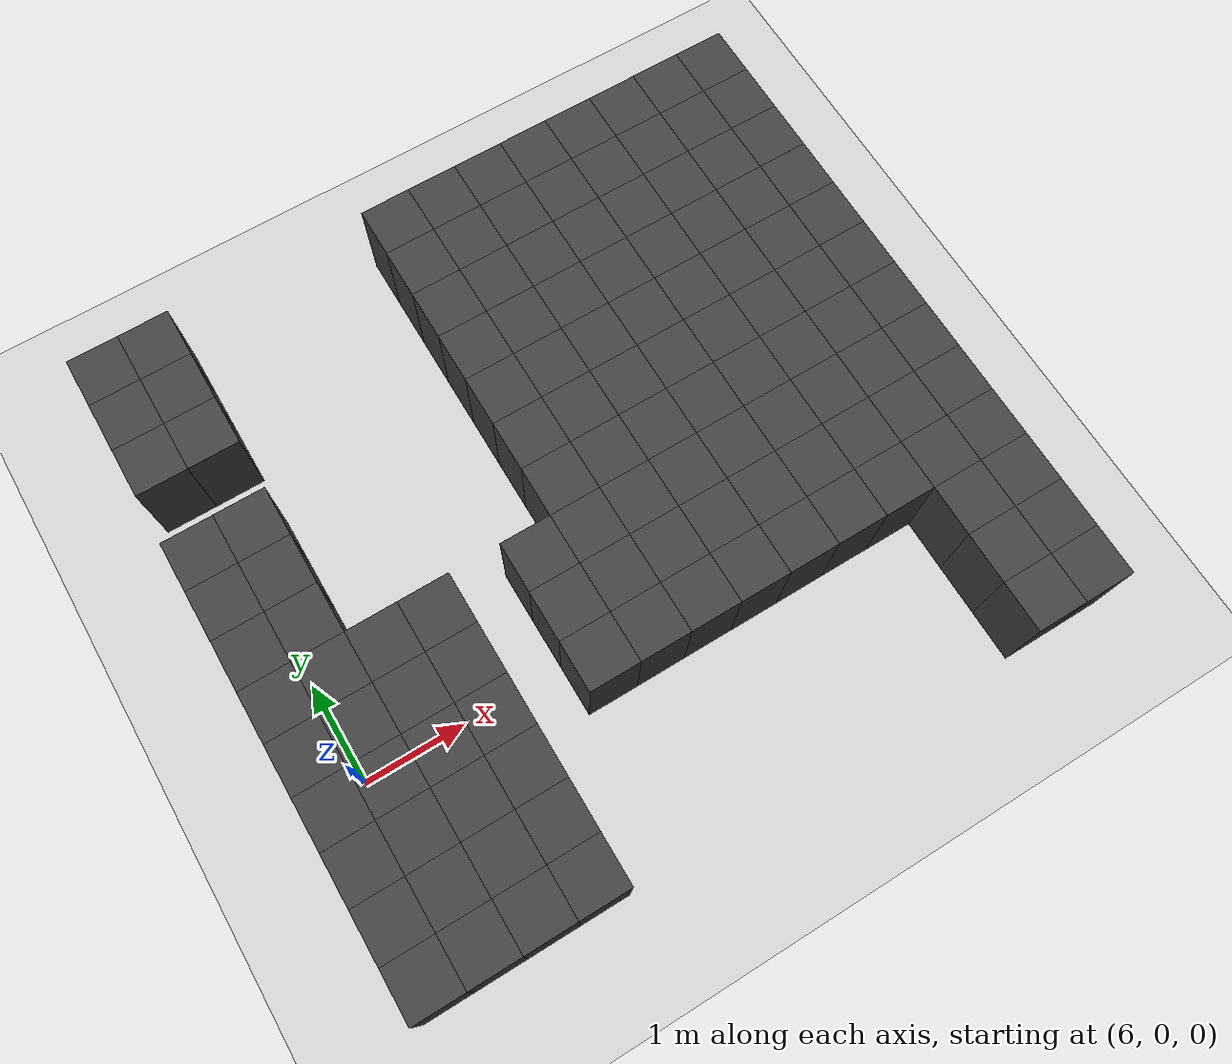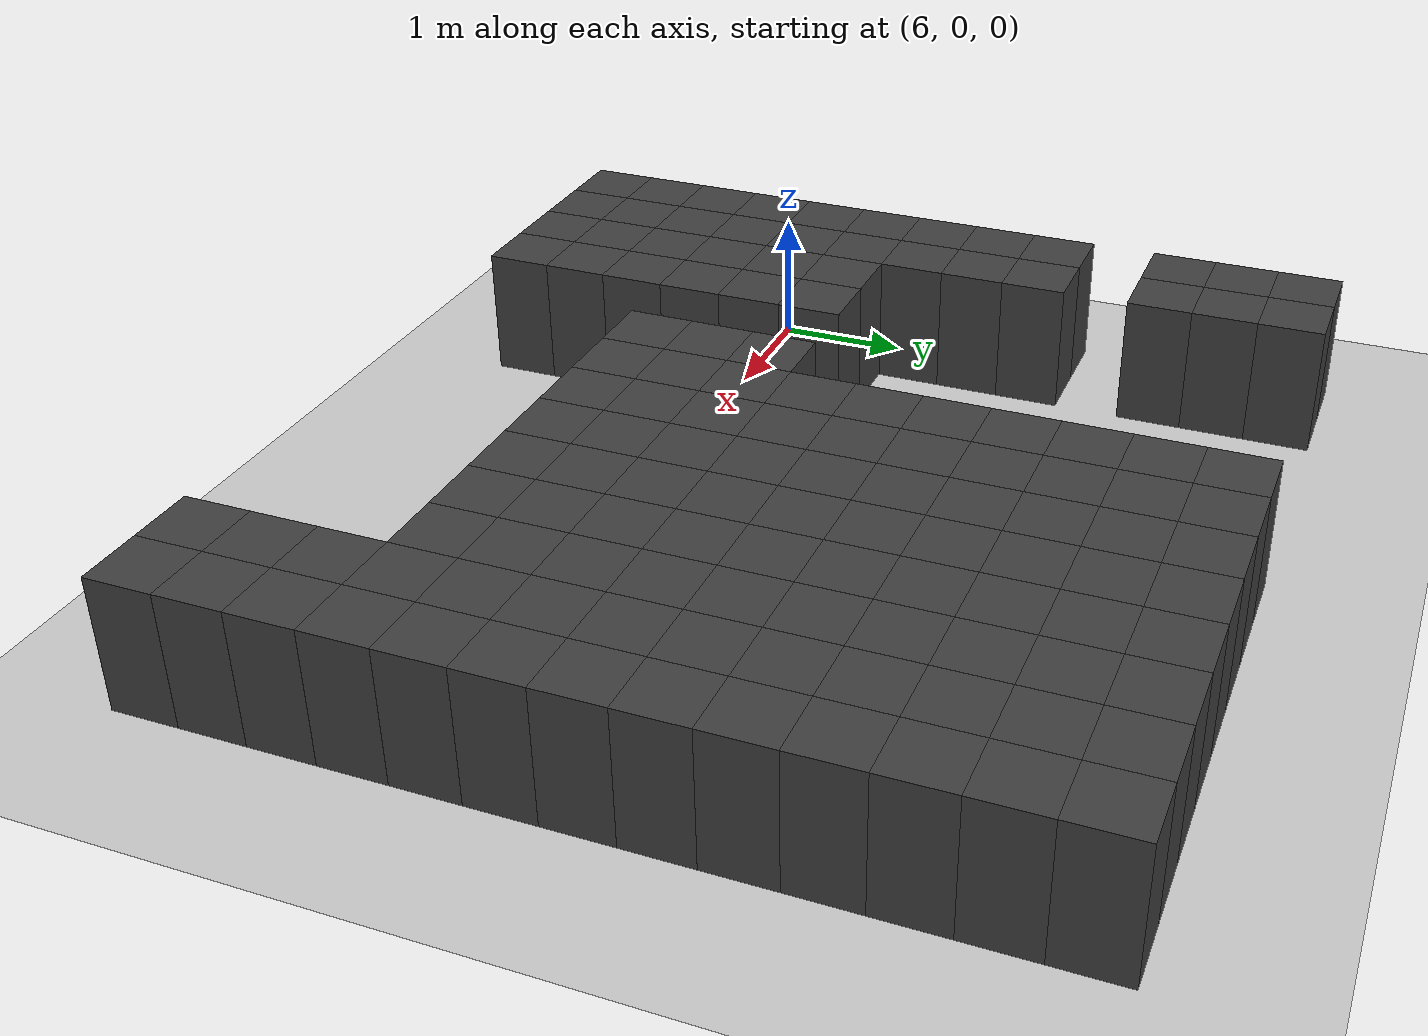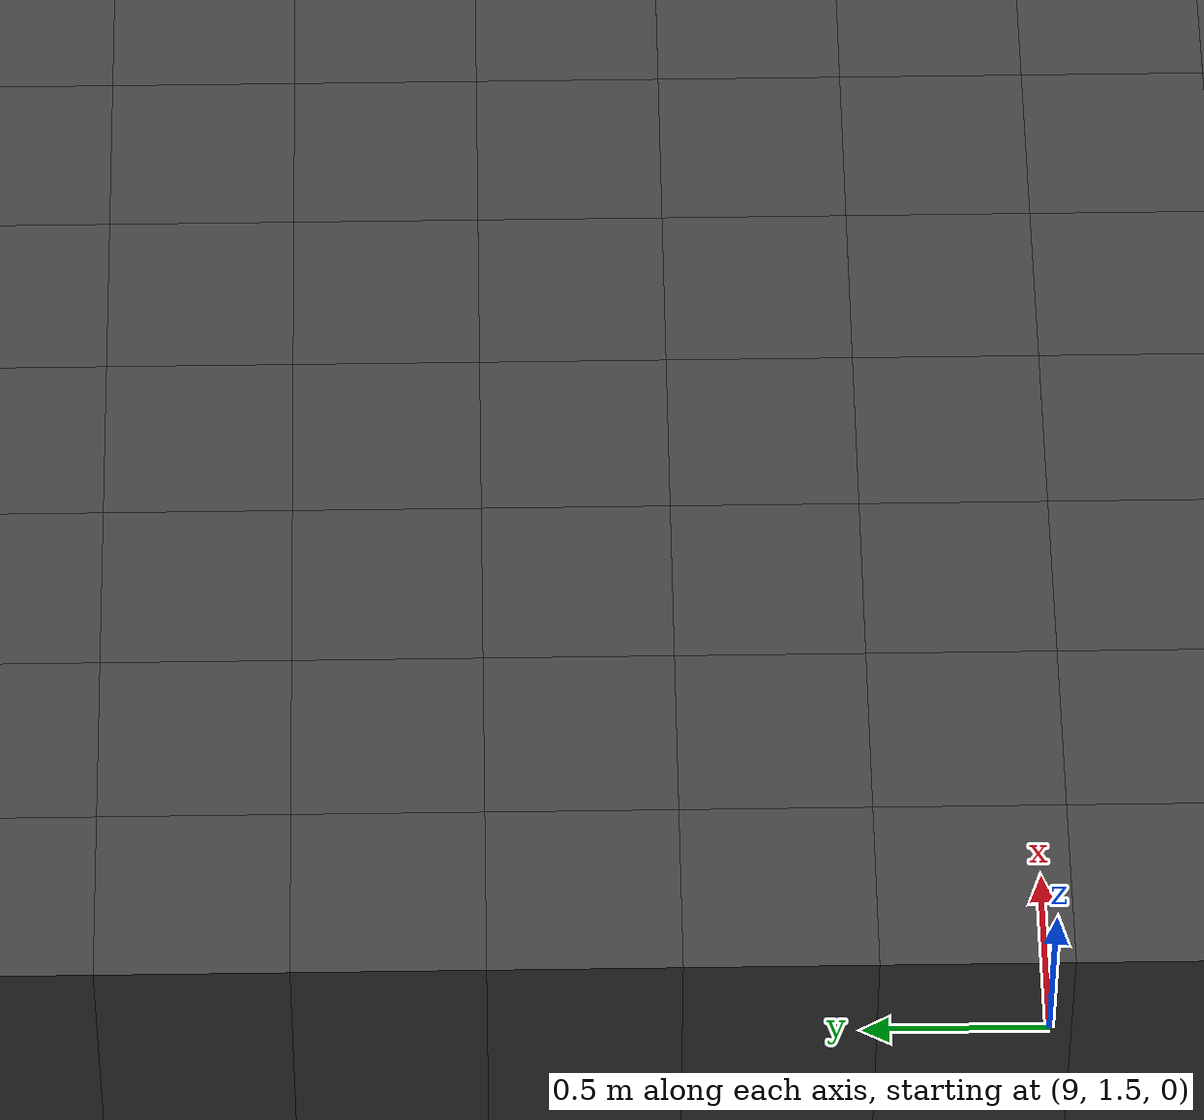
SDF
<sdf version="1.7">
 <world name="map_10764">
  <model name="ground_plane">
   <static>true</static>
   <link name="link">
    <collision name="collision">
     <geometry><plane><normal>0 0 1</normal><size>200 200</size></plane></geometry>
    </collision>
    <visual name="visual">
     <geometry><plane><normal>0 0 1</normal><size>200 200</size></plane></geometry>
     <material><ambient>0.8 0.8 0.8 1</ambient><diffuse>0.8 0.8 0.8 1</diffuse></material>
    </visual>
   </link>
  </model>
  <model name="maze_environment">
   <static>true</static>
   <link name="wall_763">
    <pose>5.750 4.250 0.500 0 0 0</pose>
    <collision name="col"><geometry><box><size>0.5 0.5 1.0</size></box></geometry></collision>
    <visual name="vis">
     <geometry><box><size>0.5 0.5 1.0</size></box></geometry>
     <material><ambient>0.15 0.15 0.15 1</ambient><diffuse>0.25 0.25 0.25 1</diffuse></material>
    </visual>
   </link>
   <link name="wall_764">
    <pose>6.250 4.250 0.500 0 0 0</pose>
    <collision name="col"><geometry><box><size>0.5 0.5 1.0</size></box></geometry></collision>
    <visual name="vis">
     <geometry><box><size>0.5 0.5 1.0</size></box></geometry>
     <material><ambient>0.15 0.15 0.15 1</ambient><diffuse>0.25 0.25 0.25 1</diffuse></material>
    </visual>
   </link>
   <link name="wall_765">
    <pose>8.750 4.250 0.500 0 0 0</pose>
    <collision name="col"><geometry><box><size>0.5 0.5 1.0</size></box></geometry></collision>
    <visual name="vis">
     <geometry><box><size>0.5 0.5 1.0</size></box></geometry>
     <material><ambient>0.15 0.15 0.15 1</ambient><diffuse>0.25 0.25 0.25 1</diffuse></material>
    </visual>
   </link>
   <link name="wall_766">
    <pose>9.250 4.250 0.500 0 0 0</pose>
    <collision name="col"><geometry><box><size>0.5 0.5 1.0</size></box></geometry></collision>
    <visual name="vis">
     <geometry><box><size>0.5 0.5 1.0</size></box></geometry>
     <material><ambient>0.15 0.15 0.15 1</ambient><diffuse>0.25 0.25 0.25 1</diffuse></material>
    </visual>
   </link>
   <link name="wall_767">
    <pose>9.750 4.250 0.500 0 0 0</pose>
    <collision name="col"><geometry><box><size>0.5 0.5 1.0</size></box></geometry></collision>
    <visual name="vis">
     <geometry><box><size>0.5 0.5 1.0</size></box></geometry>
     <material><ambient>0.15 0.15 0.15 1</ambient><diffuse>0.25 0.25 0.25 1</diffuse></material>
    </visual>
   </link>
   <link name="wall_768">
    <pose>10.250 4.250 0.500 0 0 0</pose>
    <collision name="col"><geometry><box><size>0.5 0.5 1.0</size></box></geometry></collision>
    <visual name="vis">
     <geometry><box><size>0.5 0.5 1.0</size></box></geometry>
     <material><ambient>0.15 0.15 0.15 1</ambient><diffuse>0.25 0.25 0.25 1</diffuse></material>
    </visual>
   </link>
   <link name="wall_769">
    <pose>10.750 4.250 0.500 0 0 0</pose>
    <collision name="col"><geometry><box><size>0.5 0.5 1.0</size></box></geometry></collision>
    <visual name="vis">
     <geometry><box><size>0.5 0.5 1.0</size></box></geometry>
     <material><ambient>0.15 0.15 0.15 1</ambient><diffuse>0.25 0.25 0.25 1</diffuse></material>
    </visual>
   </link>
   <link name="wall_770">
    <pose>11.250 4.250 0.500 0 0 0</pose>
    <collision name="col"><geometry><box><size>0.5 0.5 1.0</size></box></geometry></collision>
    <visual name="vis">
     <geometry><box><size>0.5 0.5 1.0</size></box></geometry>
     <material><ambient>0.15 0.15 0.15 1</ambient><diffuse>0.25 0.25 0.25 1</diffuse></material>
    </visual>
   </link>
   <link name="wall_771">
    <pose>11.750 4.250 0.500 0 0 0</pose>
    <collision name="col"><geometry><box><size>0.5 0.5 1.0</size></box></geometry></collision>
    <visual name="vis">
     <geometry><box><size>0.5 0.5 1.0</size></box></geometry>
     <material><ambient>0.15 0.15 0.15 1</ambient><diffuse>0.25 0.25 0.25 1</diffuse></material>
    </visual>
   </link>
   <link name="wall_772">
    <pose>12.250 4.250 0.500 0 0 0</pose>
    <collision name="col"><geometry><box><size>0.5 0.5 1.0</size></box></geometry></collision>
    <visual name="vis">
     <geometry><box><size>0.5 0.5 1.0</size></box></geometry>
     <material><ambient>0.15 0.15 0.15 1</ambient><diffuse>0.25 0.25 0.25 1</diffuse></material>
    </visual>
   </link>
   <link name="wall_796">
    <pose>5.750 3.750 0.500 0 0 0</pose>
    <collision name="col"><geometry><box><size>0.5 0.5 1.0</size></box></geometry></collision>
    <visual name="vis">
     <geometry><box><size>0.5 0.5 1.0</size></box></geometry>
     <material><ambient>0.15 0.15 0.15 1</ambient><diffuse>0.25 0.25 0.25 1</diffuse></material>
    </visual>
   </link>
   <link name="wall_797">
    <pose>6.250 3.750 0.500 0 0 0</pose>
    <collision name="col"><geometry><box><size>0.5 0.5 1.0</size></box></geometry></collision>
    <visual name="vis">
     <geometry><box><size>0.5 0.5 1.0</size></box></geometry>
     <material><ambient>0.15 0.15 0.15 1</ambient><diffuse>0.25 0.25 0.25 1</diffuse></material>
    </visual>
   </link>
   <link name="wall_798">
    <pose>8.750 3.750 0.500 0 0 0</pose>
    <collision name="col"><geometry><box><size>0.5 0.5 1.0</size></box></geometry></collision>
    <visual name="vis">
     <geometry><box><size>0.5 0.5 1.0</size></box></geometry>
     <material><ambient>0.15 0.15 0.15 1</ambient><diffuse>0.25 0.25 0.25 1</diffuse></material>
    </visual>
   </link>
   <link name="wall_799">
    <pose>9.250 3.750 0.500 0 0 0</pose>
    <collision name="col"><geometry><box><size>0.5 0.5 1.0</size></box></geometry></collision>
    <visual name="vis">
     <geometry><box><size>0.5 0.5 1.0</size></box></geometry>
     <material><ambient>0.15 0.15 0.15 1</ambient><diffuse>0.25 0.25 0.25 1</diffuse></material>
    </visual>
   </link>
   <link name="wall_800">
    <pose>9.750 3.750 0.500 0 0 0</pose>
    <collision name="col"><geometry><box><size>0.5 0.5 1.0</size></box></geometry></collision>
    <visual name="vis">
     <geometry><box><size>0.5 0.5 1.0</size></box></geometry>
     <material><ambient>0.15 0.15 0.15 1</ambient><diffuse>0.25 0.25 0.25 1</diffuse></material>
    </visual>
   </link>
   <link name="wall_801">
    <pose>10.250 3.750 0.500 0 0 0</pose>
    <collision name="col"><geometry><box><size>0.5 0.5 1.0</size></box></geometry></collision>
    <visual name="vis">
     <geometry><box><size>0.5 0.5 1.0</size></box></geometry>
     <material><ambient>0.15 0.15 0.15 1</ambient><diffuse>0.25 0.25 0.25 1</diffuse></material>
    </visual>
   </link>
   <link name="wall_802">
    <pose>10.750 3.750 0.500 0 0 0</pose>
    <collision name="col"><geometry><box><size>0.5 0.5 1.0</size></box></geometry></collision>
    <visual name="vis">
     <geometry><box><size>0.5 0.5 1.0</size></box></geometry>
     <material><ambient>0.15 0.15 0.15 1</ambient><diffuse>0.25 0.25 0.25 1</diffuse></material>
    </visual>
   </link>
   <link name="wall_803">
    <pose>11.250 3.750 0.500 0 0 0</pose>
    <collision name="col"><geometry><box><size>0.5 0.5 1.0</size></box></geometry></collision>
    <visual name="vis">
     <geometry><box><size>0.5 0.5 1.0</size></box></geometry>
     <material><ambient>0.15 0.15 0.15 1</ambient><diffuse>0.25 0.25 0.25 1</diffuse></material>
    </visual>
   </link>
   <link name="wall_804">
    <pose>11.750 3.750 0.500 0 0 0</pose>
    <collision name="col"><geometry><box><size>0.5 0.5 1.0</size></box></geometry></collision>
    <visual name="vis">
     <geometry><box><size>0.5 0.5 1.0</size></box></geometry>
     <material><ambient>0.15 0.15 0.15 1</ambient><diffuse>0.25 0.25 0.25 1</diffuse></material>
    </visual>
   </link>
   <link name="wall_805">
    <pose>12.250 3.750 0.500 0 0 0</pose>
    <collision name="col"><geometry><box><size>0.5 0.5 1.0</size></box></geometry></collision>
    <visual name="vis">
     <geometry><box><size>0.5 0.5 1.0</size></box></geometry>
     <material><ambient>0.15 0.15 0.15 1</ambient><diffuse>0.25 0.25 0.25 1</diffuse></material>
    </visual>
   </link>
   <link name="wall_820">
    <pose>5.750 3.250 0.500 0 0 0</pose>
    <collision name="col"><geometry><box><size>0.5 0.5 1.0</size></box></geometry></collision>
    <visual name="vis">
     <geometry><box><size>0.5 0.5 1.0</size></box></geometry>
     <material><ambient>0.15 0.15 0.15 1</ambient><diffuse>0.25 0.25 0.25 1</diffuse></material>
    </visual>
   </link>
   <link name="wall_821">
    <pose>6.250 3.250 0.500 0 0 0</pose>
    <collision name="col"><geometry><box><size>0.5 0.5 1.0</size></box></geometry></collision>
    <visual name="vis">
     <geometry><box><size>0.5 0.5 1.0</size></box></geometry>
     <material><ambient>0.15 0.15 0.15 1</ambient><diffuse>0.25 0.25 0.25 1</diffuse></material>
    </visual>
   </link>
   <link name="wall_822">
    <pose>8.750 3.250 0.500 0 0 0</pose>
    <collision name="col"><geometry><box><size>0.5 0.5 1.0</size></box></geometry></collision>
    <visual name="vis">
     <geometry><box><size>0.5 0.5 1.0</size></box></geometry>
     <material><ambient>0.15 0.15 0.15 1</ambient><diffuse>0.25 0.25 0.25 1</diffuse></material>
    </visual>
   </link>
   <link name="wall_823">
    <pose>9.250 3.250 0.500 0 0 0</pose>
    <collision name="col"><geometry><box><size>0.5 0.5 1.0</size></box></geometry></collision>
    <visual name="vis">
     <geometry><box><size>0.5 0.5 1.0</size></box></geometry>
     <material><ambient>0.15 0.15 0.15 1</ambient><diffuse>0.25 0.25 0.25 1</diffuse></material>
    </visual>
   </link>
   <link name="wall_824">
    <pose>9.750 3.250 0.500 0 0 0</pose>
    <collision name="col"><geometry><box><size>0.5 0.5 1.0</size></box></geometry></collision>
    <visual name="vis">
     <geometry><box><size>0.5 0.5 1.0</size></box></geometry>
     <material><ambient>0.15 0.15 0.15 1</ambient><diffuse>0.25 0.25 0.25 1</diffuse></material>
    </visual>
   </link>
   <link name="wall_825">
    <pose>10.250 3.250 0.500 0 0 0</pose>
    <collision name="col"><geometry><box><size>0.5 0.5 1.0</size></box></geometry></collision>
    <visual name="vis">
     <geometry><box><size>0.5 0.5 1.0</size></box></geometry>
     <material><ambient>0.15 0.15 0.15 1</ambient><diffuse>0.25 0.25 0.25 1</diffuse></material>
    </visual>
   </link>
   <link name="wall_826">
    <pose>10.750 3.250 0.500 0 0 0</pose>
    <collision name="col"><geometry><box><size>0.5 0.5 1.0</size></box></geometry></collision>
    <visual name="vis">
     <geometry><box><size>0.5 0.5 1.0</size></box></geometry>
     <material><ambient>0.15 0.15 0.15 1</ambient><diffuse>0.25 0.25 0.25 1</diffuse></material>
    </visual>
   </link>
   <link name="wall_827">
    <pose>11.250 3.250 0.500 0 0 0</pose>
    <collision name="col"><geometry><box><size>0.5 0.5 1.0</size></box></geometry></collision>
    <visual name="vis">
     <geometry><box><size>0.5 0.5 1.0</size></box></geometry>
     <material><ambient>0.15 0.15 0.15 1</ambient><diffuse>0.25 0.25 0.25 1</diffuse></material>
    </visual>
   </link>
   <link name="wall_828">
    <pose>11.750 3.250 0.500 0 0 0</pose>
    <collision name="col"><geometry><box><size>0.5 0.5 1.0</size></box></geometry></collision>
    <visual name="vis">
     <geometry><box><size>0.5 0.5 1.0</size></box></geometry>
     <material><ambient>0.15 0.15 0.15 1</ambient><diffuse>0.25 0.25 0.25 1</diffuse></material>
    </visual>
   </link>
   <link name="wall_829">
    <pose>12.250 3.250 0.500 0 0 0</pose>
    <collision name="col"><geometry><box><size>0.5 0.5 1.0</size></box></geometry></collision>
    <visual name="vis">
     <geometry><box><size>0.5 0.5 1.0</size></box></geometry>
     <material><ambient>0.15 0.15 0.15 1</ambient><diffuse>0.25 0.25 0.25 1</diffuse></material>
    </visual>
   </link>
   <link name="wall_844">
    <pose>8.750 2.750 0.500 0 0 0</pose>
    <collision name="col"><geometry><box><size>0.5 0.5 1.0</size></box></geometry></collision>
    <visual name="vis">
     <geometry><box><size>0.5 0.5 1.0</size></box></geometry>
     <material><ambient>0.15 0.15 0.15 1</ambient><diffuse>0.25 0.25 0.25 1</diffuse></material>
    </visual>
   </link>
   <link name="wall_845">
    <pose>9.250 2.750 0.500 0 0 0</pose>
    <collision name="col"><geometry><box><size>0.5 0.5 1.0</size></box></geometry></collision>
    <visual name="vis">
     <geometry><box><size>0.5 0.5 1.0</size></box></geometry>
     <material><ambient>0.15 0.15 0.15 1</ambient><diffuse>0.25 0.25 0.25 1</diffuse></material>
    </visual>
   </link>
   <link name="wall_846">
    <pose>9.750 2.750 0.500 0 0 0</pose>
    <collision name="col"><geometry><box><size>0.5 0.5 1.0</size></box></geometry></collision>
    <visual name="vis">
     <geometry><box><size>0.5 0.5 1.0</size></box></geometry>
     <material><ambient>0.15 0.15 0.15 1</ambient><diffuse>0.25 0.25 0.25 1</diffuse></material>
    </visual>
   </link>
   <link name="wall_847">
    <pose>10.250 2.750 0.500 0 0 0</pose>
    <collision name="col"><geometry><box><size>0.5 0.5 1.0</size></box></geometry></collision>
    <visual name="vis">
     <geometry><box><size>0.5 0.5 1.0</size></box></geometry>
     <material><ambient>0.15 0.15 0.15 1</ambient><diffuse>0.25 0.25 0.25 1</diffuse></material>
    </visual>
   </link>
   <link name="wall_848">
    <pose>10.750 2.750 0.500 0 0 0</pose>
    <collision name="col"><geometry><box><size>0.5 0.5 1.0</size></box></geometry></collision>
    <visual name="vis">
     <geometry><box><size>0.5 0.5 1.0</size></box></geometry>
     <material><ambient>0.15 0.15 0.15 1</ambient><diffuse>0.25 0.25 0.25 1</diffuse></material>
    </visual>
   </link>
   <link name="wall_849">
    <pose>11.250 2.750 0.500 0 0 0</pose>
    <collision name="col"><geometry><box><size>0.5 0.5 1.0</size></box></geometry></collision>
    <visual name="vis">
     <geometry><box><size>0.5 0.5 1.0</size></box></geometry>
     <material><ambient>0.15 0.15 0.15 1</ambient><diffuse>0.25 0.25 0.25 1</diffuse></material>
    </visual>
   </link>
   <link name="wall_850">
    <pose>11.750 2.750 0.500 0 0 0</pose>
    <collision name="col"><geometry><box><size>0.5 0.5 1.0</size></box></geometry></collision>
    <visual name="vis">
     <geometry><box><size>0.5 0.5 1.0</size></box></geometry>
     <material><ambient>0.15 0.15 0.15 1</ambient><diffuse>0.25 0.25 0.25 1</diffuse></material>
    </visual>
   </link>
   <link name="wall_851">
    <pose>12.250 2.750 0.500 0 0 0</pose>
    <collision name="col"><geometry><box><size>0.5 0.5 1.0</size></box></geometry></collision>
    <visual name="vis">
     <geometry><box><size>0.5 0.5 1.0</size></box></geometry>
     <material><ambient>0.15 0.15 0.15 1</ambient><diffuse>0.25 0.25 0.25 1</diffuse></material>
    </visual>
   </link>
   <link name="wall_874">
    <pose>5.750 2.250 0.500 0 0 0</pose>
    <collision name="col"><geometry><box><size>0.5 0.5 1.0</size></box></geometry></collision>
    <visual name="vis">
     <geometry><box><size>0.5 0.5 1.0</size></box></geometry>
     <material><ambient>0.15 0.15 0.15 1</ambient><diffuse>0.25 0.25 0.25 1</diffuse></material>
    </visual>
   </link>
   <link name="wall_875">
    <pose>6.250 2.250 0.500 0 0 0</pose>
    <collision name="col"><geometry><box><size>0.5 0.5 1.0</size></box></geometry></collision>
    <visual name="vis">
     <geometry><box><size>0.5 0.5 1.0</size></box></geometry>
     <material><ambient>0.15 0.15 0.15 1</ambient><diffuse>0.25 0.25 0.25 1</diffuse></material>
    </visual>
   </link>
   <link name="wall_876">
    <pose>8.750 2.250 0.500 0 0 0</pose>
    <collision name="col"><geometry><box><size>0.5 0.5 1.0</size></box></geometry></collision>
    <visual name="vis">
     <geometry><box><size>0.5 0.5 1.0</size></box></geometry>
     <material><ambient>0.15 0.15 0.15 1</ambient><diffuse>0.25 0.25 0.25 1</diffuse></material>
    </visual>
   </link>
   <link name="wall_877">
    <pose>9.250 2.250 0.500 0 0 0</pose>
    <collision name="col"><geometry><box><size>0.5 0.5 1.0</size></box></geometry></collision>
    <visual name="vis">
     <geometry><box><size>0.5 0.5 1.0</size></box></geometry>
     <material><ambient>0.15 0.15 0.15 1</ambient><diffuse>0.25 0.25 0.25 1</diffuse></material>
    </visual>
   </link>
   <link name="wall_878">
    <pose>9.750 2.250 0.500 0 0 0</pose>
    <collision name="col"><geometry><box><size>0.5 0.5 1.0</size></box></geometry></collision>
    <visual name="vis">
     <geometry><box><size>0.5 0.5 1.0</size></box></geometry>
     <material><ambient>0.15 0.15 0.15 1</ambient><diffuse>0.25 0.25 0.25 1</diffuse></material>
    </visual>
   </link>
   <link name="wall_879">
    <pose>10.250 2.250 0.500 0 0 0</pose>
    <collision name="col"><geometry><box><size>0.5 0.5 1.0</size></box></geometry></collision>
    <visual name="vis">
     <geometry><box><size>0.5 0.5 1.0</size></box></geometry>
     <material><ambient>0.15 0.15 0.15 1</ambient><diffuse>0.25 0.25 0.25 1</diffuse></material>
    </visual>
   </link>
   <link name="wall_880">
    <pose>10.750 2.250 0.500 0 0 0</pose>
    <collision name="col"><geometry><box><size>0.5 0.5 1.0</size></box></geometry></collision>
    <visual name="vis">
     <geometry><box><size>0.5 0.5 1.0</size></box></geometry>
     <material><ambient>0.15 0.15 0.15 1</ambient><diffuse>0.25 0.25 0.25 1</diffuse></material>
    </visual>
   </link>
   <link name="wall_881">
    <pose>11.250 2.250 0.500 0 0 0</pose>
    <collision name="col"><geometry><box><size>0.5 0.5 1.0</size></box></geometry></collision>
    <visual name="vis">
     <geometry><box><size>0.5 0.5 1.0</size></box></geometry>
     <material><ambient>0.15 0.15 0.15 1</ambient><diffuse>0.25 0.25 0.25 1</diffuse></material>
    </visual>
   </link>
   <link name="wall_882">
    <pose>11.750 2.250 0.500 0 0 0</pose>
    <collision name="col"><geometry><box><size>0.5 0.5 1.0</size></box></geometry></collision>
    <visual name="vis">
     <geometry><box><size>0.5 0.5 1.0</size></box></geometry>
     <material><ambient>0.15 0.15 0.15 1</ambient><diffuse>0.25 0.25 0.25 1</diffuse></material>
    </visual>
   </link>
   <link name="wall_883">
    <pose>12.250 2.250 0.500 0 0 0</pose>
    <collision name="col"><geometry><box><size>0.5 0.5 1.0</size></box></geometry></collision>
    <visual name="vis">
     <geometry><box><size>0.5 0.5 1.0</size></box></geometry>
     <material><ambient>0.15 0.15 0.15 1</ambient><diffuse>0.25 0.25 0.25 1</diffuse></material>
    </visual>
   </link>
   <link name="wall_906">
    <pose>5.750 1.750 0.500 0 0 0</pose>
    <collision name="col"><geometry><box><size>0.5 0.5 1.0</size></box></geometry></collision>
    <visual name="vis">
     <geometry><box><size>0.5 0.5 1.0</size></box></geometry>
     <material><ambient>0.15 0.15 0.15 1</ambient><diffuse>0.25 0.25 0.25 1</diffuse></material>
    </visual>
   </link>
   <link name="wall_907">
    <pose>6.250 1.750 0.500 0 0 0</pose>
    <collision name="col"><geometry><box><size>0.5 0.5 1.0</size></box></geometry></collision>
    <visual name="vis">
     <geometry><box><size>0.5 0.5 1.0</size></box></geometry>
     <material><ambient>0.15 0.15 0.15 1</ambient><diffuse>0.25 0.25 0.25 1</diffuse></material>
    </visual>
   </link>
   <link name="wall_908">
    <pose>8.750 1.750 0.500 0 0 0</pose>
    <collision name="col"><geometry><box><size>0.5 0.5 1.0</size></box></geometry></collision>
    <visual name="vis">
     <geometry><box><size>0.5 0.5 1.0</size></box></geometry>
     <material><ambient>0.15 0.15 0.15 1</ambient><diffuse>0.25 0.25 0.25 1</diffuse></material>
    </visual>
   </link>
   <link name="wall_909">
    <pose>9.250 1.750 0.500 0 0 0</pose>
    <collision name="col"><geometry><box><size>0.5 0.5 1.0</size></box></geometry></collision>
    <visual name="vis">
     <geometry><box><size>0.5 0.5 1.0</size></box></geometry>
     <material><ambient>0.15 0.15 0.15 1</ambient><diffuse>0.25 0.25 0.25 1</diffuse></material>
    </visual>
   </link>
   <link name="wall_910">
    <pose>9.750 1.750 0.500 0 0 0</pose>
    <collision name="col"><geometry><box><size>0.5 0.5 1.0</size></box></geometry></collision>
    <visual name="vis">
     <geometry><box><size>0.5 0.5 1.0</size></box></geometry>
     <material><ambient>0.15 0.15 0.15 1</ambient><diffuse>0.25 0.25 0.25 1</diffuse></material>
    </visual>
   </link>
   <link name="wall_911">
    <pose>10.250 1.750 0.500 0 0 0</pose>
    <collision name="col"><geometry><box><size>0.5 0.5 1.0</size></box></geometry></collision>
    <visual name="vis">
     <geometry><box><size>0.5 0.5 1.0</size></box></geometry>
     <material><ambient>0.15 0.15 0.15 1</ambient><diffuse>0.25 0.25 0.25 1</diffuse></material>
    </visual>
   </link>
   <link name="wall_912">
    <pose>10.750 1.750 0.500 0 0 0</pose>
    <collision name="col"><geometry><box><size>0.5 0.5 1.0</size></box></geometry></collision>
    <visual name="vis">
     <geometry><box><size>0.5 0.5 1.0</size></box></geometry>
     <material><ambient>0.15 0.15 0.15 1</ambient><diffuse>0.25 0.25 0.25 1</diffuse></material>
    </visual>
   </link>
   <link name="wall_913">
    <pose>11.250 1.750 0.500 0 0 0</pose>
    <collision name="col"><geometry><box><size>0.5 0.5 1.0</size></box></geometry></collision>
    <visual name="vis">
     <geometry><box><size>0.5 0.5 1.0</size></box></geometry>
     <material><ambient>0.15 0.15 0.15 1</ambient><diffuse>0.25 0.25 0.25 1</diffuse></material>
    </visual>
   </link>
   <link name="wall_914">
    <pose>11.750 1.750 0.500 0 0 0</pose>
    <collision name="col"><geometry><box><size>0.5 0.5 1.0</size></box></geometry></collision>
    <visual name="vis">
     <geometry><box><size>0.5 0.5 1.0</size></box></geometry>
     <material><ambient>0.15 0.15 0.15 1</ambient><diffuse>0.25 0.25 0.25 1</diffuse></material>
    </visual>
   </link>
   <link name="wall_915">
    <pose>12.250 1.750 0.500 0 0 0</pose>
    <collision name="col"><geometry><box><size>0.5 0.5 1.0</size></box></geometry></collision>
    <visual name="vis">
     <geometry><box><size>0.5 0.5 1.0</size></box></geometry>
     <material><ambient>0.15 0.15 0.15 1</ambient><diffuse>0.25 0.25 0.25 1</diffuse></material>
    </visual>
   </link>
   <link name="wall_938">
    <pose>5.750 1.250 0.500 0 0 0</pose>
    <collision name="col"><geometry><box><size>0.5 0.5 1.0</size></box></geometry></collision>
    <visual name="vis">
     <geometry><box><size>0.5 0.5 1.0</size></box></geometry>
     <material><ambient>0.15 0.15 0.15 1</ambient><diffuse>0.25 0.25 0.25 1</diffuse></material>
    </visual>
   </link>
   <link name="wall_939">
    <pose>6.250 1.250 0.500 0 0 0</pose>
    <collision name="col"><geometry><box><size>0.5 0.5 1.0</size></box></geometry></collision>
    <visual name="vis">
     <geometry><box><size>0.5 0.5 1.0</size></box></geometry>
     <material><ambient>0.15 0.15 0.15 1</ambient><diffuse>0.25 0.25 0.25 1</diffuse></material>
    </visual>
   </link>
   <link name="wall_940">
    <pose>8.750 1.250 0.500 0 0 0</pose>
    <collision name="col"><geometry><box><size>0.5 0.5 1.0</size></box></geometry></collision>
    <visual name="vis">
     <geometry><box><size>0.5 0.5 1.0</size></box></geometry>
     <material><ambient>0.15 0.15 0.15 1</ambient><diffuse>0.25 0.25 0.25 1</diffuse></material>
    </visual>
   </link>
   <link name="wall_941">
    <pose>9.250 1.250 0.500 0 0 0</pose>
    <collision name="col"><geometry><box><size>0.5 0.5 1.0</size></box></geometry></collision>
    <visual name="vis">
     <geometry><box><size>0.5 0.5 1.0</size></box></geometry>
     <material><ambient>0.15 0.15 0.15 1</ambient><diffuse>0.25 0.25 0.25 1</diffuse></material>
    </visual>
   </link>
   <link name="wall_942">
    <pose>9.750 1.250 0.500 0 0 0</pose>
    <collision name="col"><geometry><box><size>0.5 0.5 1.0</size></box></geometry></collision>
    <visual name="vis">
     <geometry><box><size>0.5 0.5 1.0</size></box></geometry>
     <material><ambient>0.15 0.15 0.15 1</ambient><diffuse>0.25 0.25 0.25 1</diffuse></material>
    </visual>
   </link>
   <link name="wall_943">
    <pose>10.250 1.250 0.500 0 0 0</pose>
    <collision name="col"><geometry><box><size>0.5 0.5 1.0</size></box></geometry></collision>
    <visual name="vis">
     <geometry><box><size>0.5 0.5 1.0</size></box></geometry>
     <material><ambient>0.15 0.15 0.15 1</ambient><diffuse>0.25 0.25 0.25 1</diffuse></material>
    </visual>
   </link>
   <link name="wall_944">
    <pose>10.750 1.250 0.500 0 0 0</pose>
    <collision name="col"><geometry><box><size>0.5 0.5 1.0</size></box></geometry></collision>
    <visual name="vis">
     <geometry><box><size>0.5 0.5 1.0</size></box></geometry>
     <material><ambient>0.15 0.15 0.15 1</ambient><diffuse>0.25 0.25 0.25 1</diffuse></material>
    </visual>
   </link>
   <link name="wall_945">
    <pose>11.250 1.250 0.500 0 0 0</pose>
    <collision name="col"><geometry><box><size>0.5 0.5 1.0</size></box></geometry></collision>
    <visual name="vis">
     <geometry><box><size>0.5 0.5 1.0</size></box></geometry>
     <material><ambient>0.15 0.15 0.15 1</ambient><diffuse>0.25 0.25 0.25 1</diffuse></material>
    </visual>
   </link>
   <link name="wall_946">
    <pose>11.750 1.250 0.500 0 0 0</pose>
    <collision name="col"><geometry><box><size>0.5 0.5 1.0</size></box></geometry></collision>
    <visual name="vis">
     <geometry><box><size>0.5 0.5 1.0</size></box></geometry>
     <material><ambient>0.15 0.15 0.15 1</ambient><diffuse>0.25 0.25 0.25 1</diffuse></material>
    </visual>
   </link>
   <link name="wall_947">
    <pose>12.250 1.250 0.500 0 0 0</pose>
    <collision name="col"><geometry><box><size>0.5 0.5 1.0</size></box></geometry></collision>
    <visual name="vis">
     <geometry><box><size>0.5 0.5 1.0</size></box></geometry>
     <material><ambient>0.15 0.15 0.15 1</ambient><diffuse>0.25 0.25 0.25 1</diffuse></material>
    </visual>
   </link>
   <link name="wall_970">
    <pose>5.750 0.750 0.500 0 0 0</pose>
    <collision name="col"><geometry><box><size>0.5 0.5 1.0</size></box></geometry></collision>
    <visual name="vis">
     <geometry><box><size>0.5 0.5 1.0</size></box></geometry>
     <material><ambient>0.15 0.15 0.15 1</ambient><diffuse>0.25 0.25 0.25 1</diffuse></material>
    </visual>
   </link>
   <link name="wall_971">
    <pose>6.250 0.750 0.500 0 0 0</pose>
    <collision name="col"><geometry><box><size>0.5 0.5 1.0</size></box></geometry></collision>
    <visual name="vis">
     <geometry><box><size>0.5 0.5 1.0</size></box></geometry>
     <material><ambient>0.15 0.15 0.15 1</ambient><diffuse>0.25 0.25 0.25 1</diffuse></material>
    </visual>
   </link>
   <link name="wall_972">
    <pose>6.750 0.750 0.500 0 0 0</pose>
    <collision name="col"><geometry><box><size>0.5 0.5 1.0</size></box></geometry></collision>
    <visual name="vis">
     <geometry><box><size>0.5 0.5 1.0</size></box></geometry>
     <material><ambient>0.15 0.15 0.15 1</ambient><diffuse>0.25 0.25 0.25 1</diffuse></material>
    </visual>
   </link>
   <link name="wall_973">
    <pose>7.250 0.750 0.500 0 0 0</pose>
    <collision name="col"><geometry><box><size>0.5 0.5 1.0</size></box></geometry></collision>
    <visual name="vis">
     <geometry><box><size>0.5 0.5 1.0</size></box></geometry>
     <material><ambient>0.15 0.15 0.15 1</ambient><diffuse>0.25 0.25 0.25 1</diffuse></material>
    </visual>
   </link>
   <link name="wall_974">
    <pose>8.250 0.750 0.500 0 0 0</pose>
    <collision name="col"><geometry><box><size>0.5 0.5 1.0</size></box></geometry></collision>
    <visual name="vis">
     <geometry><box><size>0.5 0.5 1.0</size></box></geometry>
     <material><ambient>0.15 0.15 0.15 1</ambient><diffuse>0.25 0.25 0.25 1</diffuse></material>
    </visual>
   </link>
   <link name="wall_975">
    <pose>8.750 0.750 0.500 0 0 0</pose>
    <collision name="col"><geometry><box><size>0.5 0.5 1.0</size></box></geometry></collision>
    <visual name="vis">
     <geometry><box><size>0.5 0.5 1.0</size></box></geometry>
     <material><ambient>0.15 0.15 0.15 1</ambient><diffuse>0.25 0.25 0.25 1</diffuse></material>
    </visual>
   </link>
   <link name="wall_976">
    <pose>9.250 0.750 0.500 0 0 0</pose>
    <collision name="col"><geometry><box><size>0.5 0.5 1.0</size></box></geometry></collision>
    <visual name="vis">
     <geometry><box><size>0.5 0.5 1.0</size></box></geometry>
     <material><ambient>0.15 0.15 0.15 1</ambient><diffuse>0.25 0.25 0.25 1</diffuse></material>
    </visual>
   </link>
   <link name="wall_977">
    <pose>9.750 0.750 0.500 0 0 0</pose>
    <collision name="col"><geometry><box><size>0.5 0.5 1.0</size></box></geometry></collision>
    <visual name="vis">
     <geometry><box><size>0.5 0.5 1.0</size></box></geometry>
     <material><ambient>0.15 0.15 0.15 1</ambient><diffuse>0.25 0.25 0.25 1</diffuse></material>
    </visual>
   </link>
   <link name="wall_978">
    <pose>10.250 0.750 0.500 0 0 0</pose>
    <collision name="col"><geometry><box><size>0.5 0.5 1.0</size></box></geometry></collision>
    <visual name="vis">
     <geometry><box><size>0.5 0.5 1.0</size></box></geometry>
     <material><ambient>0.15 0.15 0.15 1</ambient><diffuse>0.25 0.25 0.25 1</diffuse></material>
    </visual>
   </link>
   <link name="wall_979">
    <pose>10.750 0.750 0.500 0 0 0</pose>
    <collision name="col"><geometry><box><size>0.5 0.5 1.0</size></box></geometry></collision>
    <visual name="vis">
     <geometry><box><size>0.5 0.5 1.0</size></box></geometry>
     <material><ambient>0.15 0.15 0.15 1</ambient><diffuse>0.25 0.25 0.25 1</diffuse></material>
    </visual>
   </link>
   <link name="wall_980">
    <pose>11.250 0.750 0.500 0 0 0</pose>
    <collision name="col"><geometry><box><size>0.5 0.5 1.0</size></box></geometry></collision>
    <visual name="vis">
     <geometry><box><size>0.5 0.5 1.0</size></box></geometry>
     <material><ambient>0.15 0.15 0.15 1</ambient><diffuse>0.25 0.25 0.25 1</diffuse></material>
    </visual>
   </link>
   <link name="wall_981">
    <pose>11.750 0.750 0.500 0 0 0</pose>
    <collision name="col"><geometry><box><size>0.5 0.5 1.0</size></box></geometry></collision>
    <visual name="vis">
     <geometry><box><size>0.5 0.5 1.0</size></box></geometry>
     <material><ambient>0.15 0.15 0.15 1</ambient><diffuse>0.25 0.25 0.25 1</diffuse></material>
    </visual>
   </link>
   <link name="wall_982">
    <pose>12.250 0.750 0.500 0 0 0</pose>
    <collision name="col"><geometry><box><size>0.5 0.5 1.0</size></box></geometry></collision>
    <visual name="vis">
     <geometry><box><size>0.5 0.5 1.0</size></box></geometry>
     <material><ambient>0.15 0.15 0.15 1</ambient><diffuse>0.25 0.25 0.25 1</diffuse></material>
    </visual>
   </link>
   <link name="wall_1010">
    <pose>5.750 0.250 0.500 0 0 0</pose>
    <collision name="col"><geometry><box><size>0.5 0.5 1.0</size></box></geometry></collision>
    <visual name="vis">
     <geometry><box><size>0.5 0.5 1.0</size></box></geometry>
     <material><ambient>0.15 0.15 0.15 1</ambient><diffuse>0.25 0.25 0.25 1</diffuse></material>
    </visual>
   </link>
   <link name="wall_1011">
    <pose>6.250 0.250 0.500 0 0 0</pose>
    <collision name="col"><geometry><box><size>0.5 0.5 1.0</size></box></geometry></collision>
    <visual name="vis">
     <geometry><box><size>0.5 0.5 1.0</size></box></geometry>
     <material><ambient>0.15 0.15 0.15 1</ambient><diffuse>0.25 0.25 0.25 1</diffuse></material>
    </visual>
   </link>
   <link name="wall_1012">
    <pose>6.750 0.250 0.500 0 0 0</pose>
    <collision name="col"><geometry><box><size>0.5 0.5 1.0</size></box></geometry></collision>
    <visual name="vis">
     <geometry><box><size>0.5 0.5 1.0</size></box></geometry>
     <material><ambient>0.15 0.15 0.15 1</ambient><diffuse>0.25 0.25 0.25 1</diffuse></material>
    </visual>
   </link>
   <link name="wall_1013">
    <pose>7.250 0.250 0.500 0 0 0</pose>
    <collision name="col"><geometry><box><size>0.5 0.5 1.0</size></box></geometry></collision>
    <visual name="vis">
     <geometry><box><size>0.5 0.5 1.0</size></box></geometry>
     <material><ambient>0.15 0.15 0.15 1</ambient><diffuse>0.25 0.25 0.25 1</diffuse></material>
    </visual>
   </link>
   <link name="wall_1014">
    <pose>8.250 0.250 0.500 0 0 0</pose>
    <collision name="col"><geometry><box><size>0.5 0.5 1.0</size></box></geometry></collision>
    <visual name="vis">
     <geometry><box><size>0.5 0.5 1.0</size></box></geometry>
     <material><ambient>0.15 0.15 0.15 1</ambient><diffuse>0.25 0.25 0.25 1</diffuse></material>
    </visual>
   </link>
   <link name="wall_1015">
    <pose>8.750 0.250 0.500 0 0 0</pose>
    <collision name="col"><geometry><box><size>0.5 0.5 1.0</size></box></geometry></collision>
    <visual name="vis">
     <geometry><box><size>0.5 0.5 1.0</size></box></geometry>
     <material><ambient>0.15 0.15 0.15 1</ambient><diffuse>0.25 0.25 0.25 1</diffuse></material>
    </visual>
   </link>
   <link name="wall_1016">
    <pose>9.250 0.250 0.500 0 0 0</pose>
    <collision name="col"><geometry><box><size>0.5 0.5 1.0</size></box></geometry></collision>
    <visual name="vis">
     <geometry><box><size>0.5 0.5 1.0</size></box></geometry>
     <material><ambient>0.15 0.15 0.15 1</ambient><diffuse>0.25 0.25 0.25 1</diffuse></material>
    </visual>
   </link>
   <link name="wall_1017">
    <pose>9.750 0.250 0.500 0 0 0</pose>
    <collision name="col"><geometry><box><size>0.5 0.5 1.0</size></box></geometry></collision>
    <visual name="vis">
     <geometry><box><size>0.5 0.5 1.0</size></box></geometry>
     <material><ambient>0.15 0.15 0.15 1</ambient><diffuse>0.25 0.25 0.25 1</diffuse></material>
    </visual>
   </link>
   <link name="wall_1018">
    <pose>10.250 0.250 0.500 0 0 0</pose>
    <collision name="col"><geometry><box><size>0.5 0.5 1.0</size></box></geometry></collision>
    <visual name="vis">
     <geometry><box><size>0.5 0.5 1.0</size></box></geometry>
     <material><ambient>0.15 0.15 0.15 1</ambient><diffuse>0.25 0.25 0.25 1</diffuse></material>
    </visual>
   </link>
   <link name="wall_1019">
    <pose>10.750 0.250 0.500 0 0 0</pose>
    <collision name="col"><geometry><box><size>0.5 0.5 1.0</size></box></geometry></collision>
    <visual name="vis">
     <geometry><box><size>0.5 0.5 1.0</size></box></geometry>
     <material><ambient>0.15 0.15 0.15 1</ambient><diffuse>0.25 0.25 0.25 1</diffuse></material>
    </visual>
   </link>
   <link name="wall_1020">
    <pose>11.250 0.250 0.500 0 0 0</pose>
    <collision name="col"><geometry><box><size>0.5 0.5 1.0</size></box></geometry></collision>
    <visual name="vis">
     <geometry><box><size>0.5 0.5 1.0</size></box></geometry>
     <material><ambient>0.15 0.15 0.15 1</ambient><diffuse>0.25 0.25 0.25 1</diffuse></material>
    </visual>
   </link>
   <link name="wall_1021">
    <pose>11.750 0.250 0.500 0 0 0</pose>
    <collision name="col"><geometry><box><size>0.5 0.5 1.0</size></box></geometry></collision>
    <visual name="vis">
     <geometry><box><size>0.5 0.5 1.0</size></box></geometry>
     <material><ambient>0.15 0.15 0.15 1</ambient><diffuse>0.25 0.25 0.25 1</diffuse></material>
    </visual>
   </link>
   <link name="wall_1022">
    <pose>12.250 0.250 0.500 0 0 0</pose>
    <collision name="col"><geometry><box><size>0.5 0.5 1.0</size></box></geometry></collision>
    <visual name="vis">
     <geometry><box><size>0.5 0.5 1.0</size></box></geometry>
     <material><ambient>0.15 0.15 0.15 1</ambient><diffuse>0.25 0.25 0.25 1</diffuse></material>
    </visual>
   </link>
   <link name="wall_1050">
    <pose>5.750 -0.250 0.500 0 0 0</pose>
    <collision name="col"><geometry><box><size>0.5 0.5 1.0</size></box></geometry></collision>
    <visual name="vis">
     <geometry><box><size>0.5 0.5 1.0</size></box></geometry>
     <material><ambient>0.15 0.15 0.15 1</ambient><diffuse>0.25 0.25 0.25 1</diffuse></material>
    </visual>
   </link>
   <link name="wall_1051">
    <pose>6.250 -0.250 0.500 0 0 0</pose>
    <collision name="col"><geometry><box><size>0.5 0.5 1.0</size></box></geometry></collision>
    <visual name="vis">
     <geometry><box><size>0.5 0.5 1.0</size></box></geometry>
     <material><ambient>0.15 0.15 0.15 1</ambient><diffuse>0.25 0.25 0.25 1</diffuse></material>
    </visual>
   </link>
   <link name="wall_1052">
    <pose>6.750 -0.250 0.500 0 0 0</pose>
    <collision name="col"><geometry><box><size>0.5 0.5 1.0</size></box></geometry></collision>
    <visual name="vis">
     <geometry><box><size>0.5 0.5 1.0</size></box></geometry>
     <material><ambient>0.15 0.15 0.15 1</ambient><diffuse>0.25 0.25 0.25 1</diffuse></material>
    </visual>
   </link>
   <link name="wall_1053">
    <pose>7.250 -0.250 0.500 0 0 0</pose>
    <collision name="col"><geometry><box><size>0.5 0.5 1.0</size></box></geometry></collision>
    <visual name="vis">
     <geometry><box><size>0.5 0.5 1.0</size></box></geometry>
     <material><ambient>0.15 0.15 0.15 1</ambient><diffuse>0.25 0.25 0.25 1</diffuse></material>
    </visual>
   </link>
   <link name="wall_1054">
    <pose>8.250 -0.250 0.500 0 0 0</pose>
    <collision name="col"><geometry><box><size>0.5 0.5 1.0</size></box></geometry></collision>
    <visual name="vis">
     <geometry><box><size>0.5 0.5 1.0</size></box></geometry>
     <material><ambient>0.15 0.15 0.15 1</ambient><diffuse>0.25 0.25 0.25 1</diffuse></material>
    </visual>
   </link>
   <link name="wall_1055">
    <pose>8.750 -0.250 0.500 0 0 0</pose>
    <collision name="col"><geometry><box><size>0.5 0.5 1.0</size></box></geometry></collision>
    <visual name="vis">
     <geometry><box><size>0.5 0.5 1.0</size></box></geometry>
     <material><ambient>0.15 0.15 0.15 1</ambient><diffuse>0.25 0.25 0.25 1</diffuse></material>
    </visual>
   </link>
   <link name="wall_1056">
    <pose>9.250 -0.250 0.500 0 0 0</pose>
    <collision name="col"><geometry><box><size>0.5 0.5 1.0</size></box></geometry></collision>
    <visual name="vis">
     <geometry><box><size>0.5 0.5 1.0</size></box></geometry>
     <material><ambient>0.15 0.15 0.15 1</ambient><diffuse>0.25 0.25 0.25 1</diffuse></material>
    </visual>
   </link>
   <link name="wall_1057">
    <pose>9.750 -0.250 0.500 0 0 0</pose>
    <collision name="col"><geometry><box><size>0.5 0.5 1.0</size></box></geometry></collision>
    <visual name="vis">
     <geometry><box><size>0.5 0.5 1.0</size></box></geometry>
     <material><ambient>0.15 0.15 0.15 1</ambient><diffuse>0.25 0.25 0.25 1</diffuse></material>
    </visual>
   </link>
   <link name="wall_1058">
    <pose>10.250 -0.250 0.500 0 0 0</pose>
    <collision name="col"><geometry><box><size>0.5 0.5 1.0</size></box></geometry></collision>
    <visual name="vis">
     <geometry><box><size>0.5 0.5 1.0</size></box></geometry>
     <material><ambient>0.15 0.15 0.15 1</ambient><diffuse>0.25 0.25 0.25 1</diffuse></material>
    </visual>
   </link>
   <link name="wall_1059">
    <pose>10.750 -0.250 0.500 0 0 0</pose>
    <collision name="col"><geometry><box><size>0.5 0.5 1.0</size></box></geometry></collision>
    <visual name="vis">
     <geometry><box><size>0.5 0.5 1.0</size></box></geometry>
     <material><ambient>0.15 0.15 0.15 1</ambient><diffuse>0.25 0.25 0.25 1</diffuse></material>
    </visual>
   </link>
   <link name="wall_1060">
    <pose>11.250 -0.250 0.500 0 0 0</pose>
    <collision name="col"><geometry><box><size>0.5 0.5 1.0</size></box></geometry></collision>
    <visual name="vis">
     <geometry><box><size>0.5 0.5 1.0</size></box></geometry>
     <material><ambient>0.15 0.15 0.15 1</ambient><diffuse>0.25 0.25 0.25 1</diffuse></material>
    </visual>
   </link>
   <link name="wall_1061">
    <pose>11.750 -0.250 0.500 0 0 0</pose>
    <collision name="col"><geometry><box><size>0.5 0.5 1.0</size></box></geometry></collision>
    <visual name="vis">
     <geometry><box><size>0.5 0.5 1.0</size></box></geometry>
     <material><ambient>0.15 0.15 0.15 1</ambient><diffuse>0.25 0.25 0.25 1</diffuse></material>
    </visual>
   </link>
   <link name="wall_1062">
    <pose>12.250 -0.250 0.500 0 0 0</pose>
    <collision name="col"><geometry><box><size>0.5 0.5 1.0</size></box></geometry></collision>
    <visual name="vis">
     <geometry><box><size>0.5 0.5 1.0</size></box></geometry>
     <material><ambient>0.15 0.15 0.15 1</ambient><diffuse>0.25 0.25 0.25 1</diffuse></material>
    </visual>
   </link>
   <link name="wall_1090">
    <pose>5.750 -0.750 0.500 0 0 0</pose>
    <collision name="col"><geometry><box><size>0.5 0.5 1.0</size></box></geometry></collision>
    <visual name="vis">
     <geometry><box><size>0.5 0.5 1.0</size></box></geometry>
     <material><ambient>0.15 0.15 0.15 1</ambient><diffuse>0.25 0.25 0.25 1</diffuse></material>
    </visual>
   </link>
   <link name="wall_1091">
    <pose>6.250 -0.750 0.500 0 0 0</pose>
    <collision name="col"><geometry><box><size>0.5 0.5 1.0</size></box></geometry></collision>
    <visual name="vis">
     <geometry><box><size>0.5 0.5 1.0</size></box></geometry>
     <material><ambient>0.15 0.15 0.15 1</ambient><diffuse>0.25 0.25 0.25 1</diffuse></material>
    </visual>
   </link>
   <link name="wall_1092">
    <pose>6.750 -0.750 0.500 0 0 0</pose>
    <collision name="col"><geometry><box><size>0.5 0.5 1.0</size></box></geometry></collision>
    <visual name="vis">
     <geometry><box><size>0.5 0.5 1.0</size></box></geometry>
     <material><ambient>0.15 0.15 0.15 1</ambient><diffuse>0.25 0.25 0.25 1</diffuse></material>
    </visual>
   </link>
   <link name="wall_1093">
    <pose>7.250 -0.750 0.500 0 0 0</pose>
    <collision name="col"><geometry><box><size>0.5 0.5 1.0</size></box></geometry></collision>
    <visual name="vis">
     <geometry><box><size>0.5 0.5 1.0</size></box></geometry>
     <material><ambient>0.15 0.15 0.15 1</ambient><diffuse>0.25 0.25 0.25 1</diffuse></material>
    </visual>
   </link>
   <link name="wall_1094">
    <pose>11.750 -0.750 0.500 0 0 0</pose>
    <collision name="col"><geometry><box><size>0.5 0.5 1.0</size></box></geometry></collision>
    <visual name="vis">
     <geometry><box><size>0.5 0.5 1.0</size></box></geometry>
     <material><ambient>0.15 0.15 0.15 1</ambient><diffuse>0.25 0.25 0.25 1</diffuse></material>
    </visual>
   </link>
   <link name="wall_1095">
    <pose>12.250 -0.750 0.500 0 0 0</pose>
    <collision name="col"><geometry><box><size>0.5 0.5 1.0</size></box></geometry></collision>
    <visual name="vis">
     <geometry><box><size>0.5 0.5 1.0</size></box></geometry>
     <material><ambient>0.15 0.15 0.15 1</ambient><diffuse>0.25 0.25 0.25 1</diffuse></material>
    </visual>
   </link>
   <link name="wall_1123">
    <pose>5.750 -1.250 0.500 0 0 0</pose>
    <collision name="col"><geometry><box><size>0.5 0.5 1.0</size></box></geometry></collision>
    <visual name="vis">
     <geometry><box><size>0.5 0.5 1.0</size></box></geometry>
     <material><ambient>0.15 0.15 0.15 1</ambient><diffuse>0.25 0.25 0.25 1</diffuse></material>
    </visual>
   </link>
   <link name="wall_1124">
    <pose>6.250 -1.250 0.500 0 0 0</pose>
    <collision name="col"><geometry><box><size>0.5 0.5 1.0</size></box></geometry></collision>
    <visual name="vis">
     <geometry><box><size>0.5 0.5 1.0</size></box></geometry>
     <material><ambient>0.15 0.15 0.15 1</ambient><diffuse>0.25 0.25 0.25 1</diffuse></material>
    </visual>
   </link>
   <link name="wall_1125">
    <pose>6.750 -1.250 0.500 0 0 0</pose>
    <collision name="col"><geometry><box><size>0.5 0.5 1.0</size></box></geometry></collision>
    <visual name="vis">
     <geometry><box><size>0.5 0.5 1.0</size></box></geometry>
     <material><ambient>0.15 0.15 0.15 1</ambient><diffuse>0.25 0.25 0.25 1</diffuse></material>
    </visual>
   </link>
   <link name="wall_1126">
    <pose>7.250 -1.250 0.500 0 0 0</pose>
    <collision name="col"><geometry><box><size>0.5 0.5 1.0</size></box></geometry></collision>
    <visual name="vis">
     <geometry><box><size>0.5 0.5 1.0</size></box></geometry>
     <material><ambient>0.15 0.15 0.15 1</ambient><diffuse>0.25 0.25 0.25 1</diffuse></material>
    </visual>
   </link>
   <link name="wall_1127">
    <pose>11.750 -1.250 0.500 0 0 0</pose>
    <collision name="col"><geometry><box><size>0.5 0.5 1.0</size></box></geometry></collision>
    <visual name="vis">
     <geometry><box><size>0.5 0.5 1.0</size></box></geometry>
     <material><ambient>0.15 0.15 0.15 1</ambient><diffuse>0.25 0.25 0.25 1</diffuse></material>
    </visual>
   </link>
   <link name="wall_1128">
    <pose>12.250 -1.250 0.500 0 0 0</pose>
    <collision name="col"><geometry><box><size>0.5 0.5 1.0</size></box></geometry></collision>
    <visual name="vis">
     <geometry><box><size>0.5 0.5 1.0</size></box></geometry>
     <material><ambient>0.15 0.15 0.15 1</ambient><diffuse>0.25 0.25 0.25 1</diffuse></material>
    </visual>
   </link>
   <link name="wall_1156">
    <pose>5.750 -1.750 0.500 0 0 0</pose>
    <collision name="col"><geometry><box><size>0.5 0.5 1.0</size></box></geometry></collision>
    <visual name="vis">
     <geometry><box><size>0.5 0.5 1.0</size></box></geometry>
     <material><ambient>0.15 0.15 0.15 1</ambient><diffuse>0.25 0.25 0.25 1</diffuse></material>
    </visual>
   </link>
   <link name="wall_1157">
    <pose>6.250 -1.750 0.500 0 0 0</pose>
    <collision name="col"><geometry><box><size>0.5 0.5 1.0</size></box></geometry></collision>
    <visual name="vis">
     <geometry><box><size>0.5 0.5 1.0</size></box></geometry>
     <material><ambient>0.15 0.15 0.15 1</ambient><diffuse>0.25 0.25 0.25 1</diffuse></material>
    </visual>
   </link>
   <link name="wall_1158">
    <pose>6.750 -1.750 0.500 0 0 0</pose>
    <collision name="col"><geometry><box><size>0.5 0.5 1.0</size></box></geometry></collision>
    <visual name="vis">
     <geometry><box><size>0.5 0.5 1.0</size></box></geometry>
     <material><ambient>0.15 0.15 0.15 1</ambient><diffuse>0.25 0.25 0.25 1</diffuse></material>
    </visual>
   </link>
   <link name="wall_1159">
    <pose>7.250 -1.750 0.500 0 0 0</pose>
    <collision name="col"><geometry><box><size>0.5 0.5 1.0</size></box></geometry></collision>
    <visual name="vis">
     <geometry><box><size>0.5 0.5 1.0</size></box></geometry>
     <material><ambient>0.15 0.15 0.15 1</ambient><diffuse>0.25 0.25 0.25 1</diffuse></material>
    </visual>
   </link>
   <link name="wall_1160">
    <pose>11.750 -1.750 0.500 0 0 0</pose>
    <collision name="col"><geometry><box><size>0.5 0.5 1.0</size></box></geometry></collision>
    <visual name="vis">
     <geometry><box><size>0.5 0.5 1.0</size></box></geometry>
     <material><ambient>0.15 0.15 0.15 1</ambient><diffuse>0.25 0.25 0.25 1</diffuse></material>
    </visual>
   </link>
   <link name="wall_1161">
    <pose>12.250 -1.750 0.500 0 0 0</pose>
    <collision name="col"><geometry><box><size>0.5 0.5 1.0</size></box></geometry></collision>
    <visual name="vis">
     <geometry><box><size>0.5 0.5 1.0</size></box></geometry>
     <material><ambient>0.15 0.15 0.15 1</ambient><diffuse>0.25 0.25 0.25 1</diffuse></material>
    </visual>
   </link>
  </model>
 </world>
</sdf>
